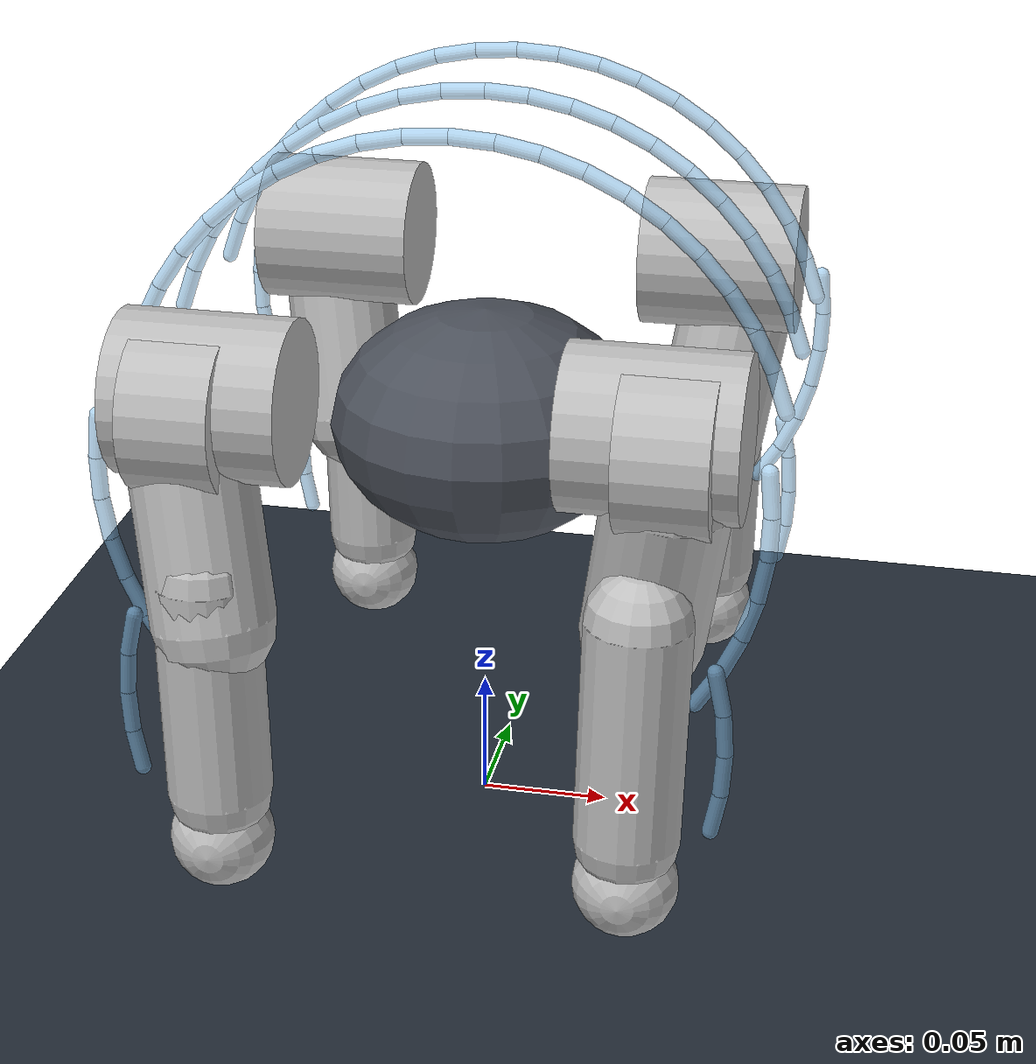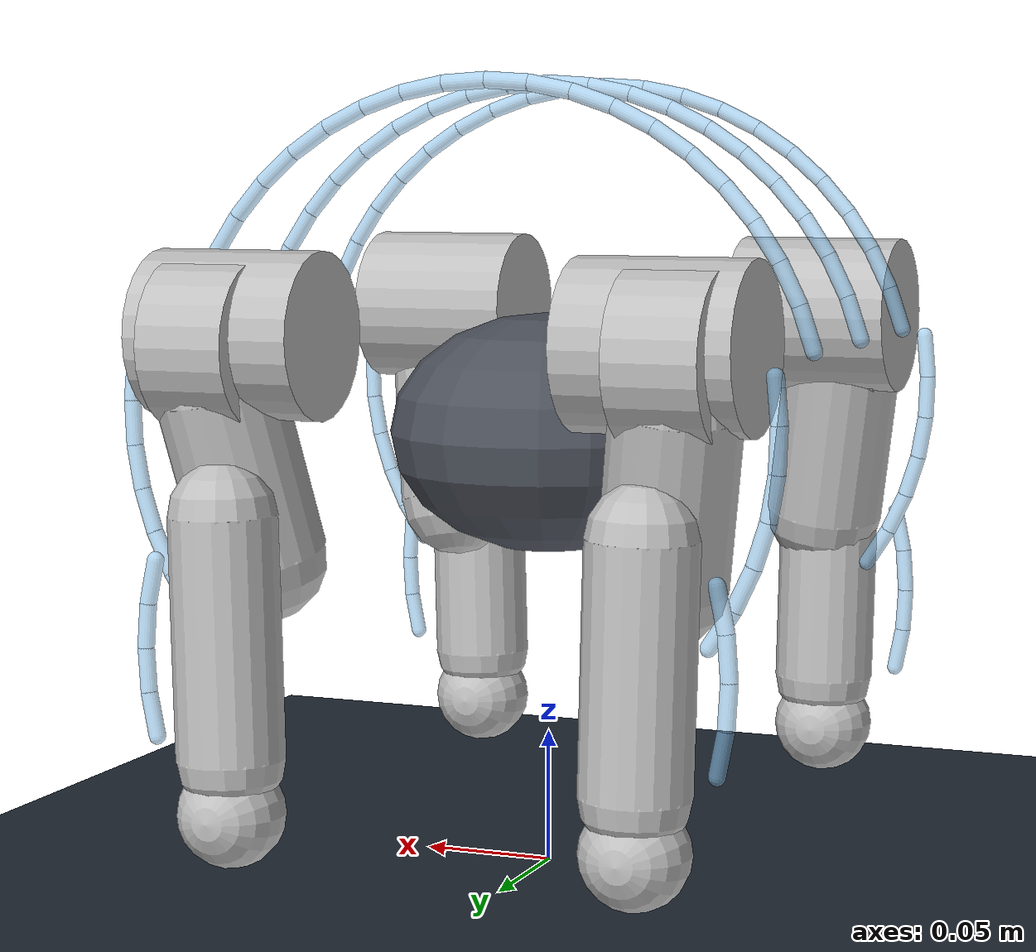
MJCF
<mujoco model="rollingquad_2">
  <compiler angle="radian" autolimits="true" />
  <option timestep="0.001" gravity="0 0 -9.81" integrator="implicitfast" cone="elliptic" iterations="20" ls_iterations="10" />
  <visual>
    <global azimuth="120" elevation="-18" offwidth="960" offheight="720" />
    <headlight ambient="0.35 0.35 0.35" diffuse="0.65 0.65 0.65" specular="0.20 0.20 0.20" />
  </visual>
  <asset>
    <texture type="skybox" builtin="gradient" rgb1=".18 .23 .30" rgb2=".02 .03 .05" width="512" height="512" />
    <texture name="grid" type="2d" builtin="checker" width="512" height="512" rgb1=".18 .22 .27" rgb2=".10 .13 .17" />
    <material name="ground" texture="grid" texrepeat="1 1" texuniform="true" reflectance="0.05" />
    <mesh name="Lower_leg_with_foot_1" content_type="model/stl" file="../meshes/Lower_leg_with_foot_1.stl" />
    <mesh name="Lower_leg_with_foot_1_2" content_type="model/stl" file="../meshes/Lower_leg_with_foot_1_2.stl" />
    <mesh name="Lower_leg_with_foot_mirror_1" content_type="model/stl" file="../meshes/Lower_leg_with_foot_mirror_1.stl" />
    <mesh name="Lower_leg_with_foot_mirror_1_2" content_type="model/stl" file="../meshes/Lower_leg_with_foot_mirror_1_2.stl" />
    <mesh name="Upperleg_with_motor_1" content_type="model/stl" file="../meshes/Upperleg_with_motor_1.stl" />
    <mesh name="Upperleg_with_motor_1_2" content_type="model/stl" file="../meshes/Upperleg_with_motor_1_2.stl" />
    <mesh name="Upperleg_with_motor_mirror_1" content_type="model/stl" file="../meshes/Upperleg_with_motor_mirror_1.stl" />
    <mesh name="Upperleg_with_motor_mirror_1_2" content_type="model/stl" file="../meshes/Upperleg_with_motor_mirror_1_2.stl" />
    <mesh name="abduction_mirror_1" content_type="model/stl" file="../meshes/abduction_mirror_1.stl" />
    <mesh name="abduction_mirror_1_2" content_type="model/stl" file="../meshes/abduction_mirror_1_2.stl" />
    <mesh name="abduction_1" content_type="model/stl" file="../meshes/abduction_1.stl" />
    <mesh name="abduction_1_2" content_type="model/stl" file="../meshes/abduction_1_2.stl" />
    <mesh name="torso_2" content_type="model/stl" file="../meshes/torso_2.stl" />
  </asset>
  <default>
    <joint limited="true" damping="0.01" armature="0.0016" />
    <!-- Individual robot geoms override these masks with the self-collision
         whitelist below.  Bit 1 remains the floor category. -->
    <geom contype="0" conaffinity="1" condim="3" friction="0.8 0.02 0.01" solref="0.01 1" solimp="0.9 0.95 0.001" />
    <!-- Position servo: kp=5, kd=0.1, torque limited to +/-3 N m. -->
    <default class="single_servo">
      <general forcelimited="true" forcerange="-3 3" ctrllimited="true" gainprm="5 0 0" biastype="affine" biasprm="0 -5 -0.1" />
    </default>
  </default>
  <worldbody>
    <light name="key" directional="true" castshadow="true" pos="-1 -2 4" dir="0.25 0.15 -1" diffuse="0.85 0.85 0.82" specular="0.20 0.20 0.20" />
    <camera name="tracking" mode="targetbody" target="torso" pos="0.55 -0.65 0.40" />
    <geom name="floor" type="plane" size="12 6 0.05" contype="1" conaffinity="0" material="ground" />
    <body name="torso" pos="0 0 0.21">
      <freejoint name="root" />
      <inertial pos="-0.000349048829 -2.267291516e-05 -0.0168232962" mass="1.47556" fullinertia="0.00473904 0.00838848 0.00826464 1.23727e-08 7.69713e-05 -7.00545e-07" />
      <!-- Collision bits: 2=front leg, 4=rear leg, 8=foot/shank,
           16=torso.  Enabled pairs: front-rear leg, leg-torso,
           foot-leg and foot-foot. -->
      <body name="front_right_hip_abduction_body" pos="0.0752002 -0.0650008 -3.15437e-07" quat="0.707105 0.707108 1.28657e-06 5.65589e-07">
        <inertial pos="0.00310332 -0.00189648 -0.160009" quat="0.969701 -0.00815916 0.0210186 -0.243253" mass="0.179903" diaginertia="7.15749e-05 5.16423e-05 4.28065e-05" />
        <joint name="front_right_hip" range="-1.745329252 1.902408885" actuatorfrcrange="-3 3" axis="0 0 1" />
        <geom name="front_right_hip_link_geom" contype="2" conaffinity="29" rgba="0.749 0.749 0.749 1" type="cylinder" size="0.03 0.0315" pos="0.0041383029 -0.0042852449 -0.15880149" quat="0.7071067811865476 0 0.7071067811865476 0" />
        <body name="front_right_thigh" pos="0.0146072 -0.00819716 -0.162001">
          <inertial pos="-0.0101991 -0.0708564 0.000226941" quat="0.617317 0.345769 -0.618182 0.342365" mass="0.18907" diaginertia="0.000132232 0.000106686 4.49875e-05" />
          <joint name="front_right_hip_abduction" range="-0.5236 3.66519" actuatorfrcrange="-3 3" axis="0.872069 -0.489382 0" />
          <geom name="front_right_thigh_geom" contype="2" conaffinity="29" rgba="0.749 0.749 0.749 1" type="capsule" size="0.023" fromto="-0.0039743073 -0.015540544 -0.0032586879 -0.0137759 -0.0767678 0.01075" />
          <geom name="front_right_thigh_motor" type="cylinder" size="0.03 0.0165" pos="-0.0039743073 0.00095945588 -0.0032586879" quat="0.7071067811865476 0 0.7071067811865476 0" contype="2" conaffinity="29" rgba="0.749 0.749 0.749 1" />
          <body name="front_right_shank" pos="-0.0137759 -0.0767678 0.01075">
            <inertial pos="0.00457242 -0.0602669 -0.0272819" quat="0.439984 0.532687 -0.48053 0.540139" mass="0.046425" diaginertia="6.03771e-05 5.63949e-05 8.99449e-06" />
            <joint name="front_right_knee" range="0.1745329252 2.094395102" actuatorfrcrange="-3 3" axis="0 0 -1" />
            <geom name="front_right_foot_proxy" contype="8" conaffinity="15" rgba="0.749 0.749 0.749 1" type="sphere" size="0.0195" pos="1.796e-05 -0.08776548 -0.02669029" />
            <geom name="front_right_shank_geom" type="capsule" size="0.0195" fromto="0.0021300607 0.018498501 -0.026470547 1.796e-05 -0.06826548 -0.02669029" contype="8" conaffinity="15" rgba="0.749 0.749 0.749 1" />
            <site name="front_right_foot_site" pos="0.00001796 -0.08776548 -0.02669029" size="0.004" />
            <geom name="front_right_shank_shell_01" type="capsule" size="0.003" fromto="0.029688218 -0.062323795 -0.026470547 0.032737023 -0.04650192 -0.026470547" contype="16" conaffinity="7" rgba="0.55 0.78 0.95 0.60" />
            <geom name="front_right_shank_shell_02" type="capsule" size="0.003" fromto="0.032737023 -0.04650192 -0.026470547 0.033676562 -0.030444254 -0.026470547" contype="16" conaffinity="7" rgba="0.55 0.78 0.95 0.60" />
            <geom name="front_right_shank_shell_03" type="capsule" size="0.003" fromto="0.033676562 -0.030444254 -0.026470547 0.03249076 -0.014425551 -0.026470547" contype="16" conaffinity="7" rgba="0.55 0.78 0.95 0.60" />
            <geom name="front_right_shank_shell_04" type="capsule" size="0.003" fromto="0.03249076 -0.014425551 -0.026470547 0.029199905 0.0012801057 -0.026470547" contype="16" conaffinity="7" rgba="0.55 0.78 0.95 0.60" />
          </body>
          <geom name="front_right_thigh_shell_01" type="capsule" size="0.003" fromto="0.03014752 -0.03630308 -0.0032586879 0.030778093 -0.020227207 -0.0032586879" contype="16" conaffinity="7" rgba="0.55 0.78 0.95 0.60" />
          <geom name="front_right_thigh_shell_02" type="capsule" size="0.003" fromto="0.030778093 -0.020227207 -0.0032586879 0.029286892 -0.0041797872 -0.0032586879" contype="16" conaffinity="7" rgba="0.55 0.78 0.95 0.60" />
          <geom name="front_right_thigh_shell_03" type="capsule" size="0.003" fromto="0.00715965 -0.095480788 -0.0032586879 0.015812847 -0.081976517 -0.0032586879" contype="16" conaffinity="7" rgba="0.55 0.78 0.95 0.60" />
          <geom name="front_right_thigh_shell_04" type="capsule" size="0.003" fromto="0.015812847 -0.081976517 -0.0032586879 0.022600329 -0.067444151 -0.0032586879" contype="16" conaffinity="7" rgba="0.55 0.78 0.95 0.60" />
          <geom name="front_right_thigh_shell_05" type="capsule" size="0.003" fromto="0.022600329 -0.067444151 -0.0032586879 0.027405962 -0.052132342 -0.0032586879" contype="16" conaffinity="7" rgba="0.55 0.78 0.95 0.60" />
          <geom name="front_right_thigh_shell_06" type="capsule" size="0.003" fromto="0.027405962 -0.052132342 -0.0032586879 0.03014752 -0.03630308 -0.0032586879" contype="16" conaffinity="7" rgba="0.55 0.78 0.95 0.60" />
        </body>
      </body>
      <body name="rear_left_hip_abduction_body" pos="-0.0752002 0.0650008 3.15437e-07" quat="0.707105 0.707108 1.28657e-06 5.65589e-07">
        <inertial pos="-0.00310332 -0.00189648 0.160009" quat="0.969701 0.00815916 0.0210186 0.243253" mass="0.179903" diaginertia="7.15749e-05 5.16423e-05 4.28065e-05" />
        <joint name="rear_left_hip" range="-1.745329252 1.902408885" actuatorfrcrange="-3 3" axis="0 0 -1" />
        <geom name="rear_left_hip_link_geom" contype="4" conaffinity="27" rgba="0.749 0.749 0.749 1" type="cylinder" size="0.03 0.0315" pos="-0.0041383029 -0.0042852449 0.15880149" quat="0.7071067811865476 0 0.7071067811865476 0" />
        <body name="rear_left_thigh" pos="-0.0156536 -0.00878442 0.162001">
          <inertial pos="0.0112456 -0.0702691 -0.000226941" quat="0.345769 0.617317 -0.342365 0.618182" mass="0.18907" diaginertia="0.000132232 0.000106686 4.49875e-05" />
          <joint name="rear_left_hip_abduction" range="-0.5236 3.66519" actuatorfrcrange="-3 3" axis="-0.872069 -0.489382 0" />
          <geom name="rear_left_thigh_geom" contype="4" conaffinity="27" rgba="0.749 0.749 0.749 1" type="capsule" size="0.023" fromto="0.0050197324 -0.014953284 0.0032551564 0.0148224 -0.0761805 0.014" />
          <geom name="rear_left_thigh_motor" type="cylinder" size="0.03 0.0165" pos="0.0050197324 0.0015467162 0.0032551564" quat="0.7071067811865476 0 0.7071067811865476 0" contype="4" conaffinity="27" rgba="0.749 0.749 0.749 1" />
          <body name="rear_left_shank" pos="0.0148224 -0.0761805 0.014">
            <inertial pos="-0.00457242 -0.0602669 0.0025319" quat="0.532687 0.439984 -0.540139 0.48053" mass="0.046425" diaginertia="6.03771e-05 5.63949e-05 8.99449e-06" />
            <joint name="rear_left_knee" range="0.1745329252 2.094395102" actuatorfrcrange="-3 3" axis="0 0 1" />
            <geom name="rear_left_foot_proxy" contype="8" conaffinity="15" rgba="0.749 0.749 0.749 1" type="sphere" size="0.0195" pos="-1.796e-05 -0.08776548 0.00194029" />
            <geom name="rear_left_shank_geom" type="capsule" size="0.0195" fromto="-0.0021300606 0.018498501 0.0017205471 -1.796e-05 -0.06826548 0.00194029" contype="8" conaffinity="15" rgba="0.749 0.749 0.749 1" />
            <site name="rear_left_foot_site" pos="-0.00001796 -0.08776548 0.00194029" size="0.004" />
            <geom name="rear_left_shank_shell_01" type="capsule" size="0.003" fromto="-0.029414791 0.00076822822 0.0017205471 -0.032705617 -0.014937443 0.0017205471" contype="16" conaffinity="7" rgba="0.55 0.78 0.95 0.60" />
            <geom name="rear_left_shank_shell_02" type="capsule" size="0.003" fromto="-0.032705617 -0.014937443 0.0017205471 -0.03389139 -0.030956158 0.0017205471" contype="16" conaffinity="7" rgba="0.55 0.78 0.95 0.60" />
            <geom name="rear_left_shank_shell_03" type="capsule" size="0.003" fromto="-0.03389139 -0.030956158 0.0017205471 -0.032951822 -0.047013832 0.0017205471" contype="16" conaffinity="7" rgba="0.55 0.78 0.95 0.60" />
            <geom name="rear_left_shank_shell_04" type="capsule" size="0.003" fromto="-0.032951822 -0.047013832 0.0017205471 -0.029902988 -0.062835713 0.0017205471" contype="16" conaffinity="7" rgba="0.55 0.78 0.95 0.60" />
          </body>
          <geom name="rear_left_thigh_shell_01" type="capsule" size="0.003" fromto="-0.028240558 -0.0035918627 0.0032551564 -0.029731727 -0.019639283 0.0032551564" contype="16" conaffinity="7" rgba="0.55 0.78 0.95 0.60" />
          <geom name="rear_left_thigh_shell_02" type="capsule" size="0.003" fromto="-0.029731727 -0.019639283 0.0032551564 -0.029101121 -0.035715153 0.0032551564" contype="16" conaffinity="7" rgba="0.55 0.78 0.95 0.60" />
          <geom name="rear_left_thigh_shell_03" type="capsule" size="0.003" fromto="-0.029101121 -0.035715153 0.0032551564 -0.026359531 -0.05154441 0.0032551564" contype="16" conaffinity="7" rgba="0.55 0.78 0.95 0.60" />
          <geom name="rear_left_thigh_shell_04" type="capsule" size="0.003" fromto="-0.026359531 -0.05154441 0.0032551564 -0.021553865 -0.066856211 0.0032551564" contype="16" conaffinity="7" rgba="0.55 0.78 0.95 0.60" />
          <geom name="rear_left_thigh_shell_05" type="capsule" size="0.003" fromto="-0.021553865 -0.066856211 0.0032551564 -0.01476635 -0.081388568 0.0032551564" contype="16" conaffinity="7" rgba="0.55 0.78 0.95 0.60" />
          <geom name="rear_left_thigh_shell_06" type="capsule" size="0.003" fromto="-0.01476635 -0.081388568 0.0032551564 -0.0061131219 -0.094892826 0.0032551564" contype="16" conaffinity="7" rgba="0.55 0.78 0.95 0.60" />
        </body>
      </body>
      <body name="front_left_hip_abduction_body" pos="0.0751998 0.0650012 1.62087e-07" quat="0.707105 0.707108 1.28657e-06 5.65589e-07">
        <inertial pos="0.00284687 -0.00174682 0.15995" quat="0.969271 -0.0133055 -0.0221507 -0.244634" mass="0.179903" diaginertia="7.23188e-05 5.20415e-05 4.37798e-05" />
        <joint name="front_left_hip" range="-1.74533 1.90241" actuatorfrcrange="-3 3" />
        <geom name="front_left_hip_link_geom" contype="2" conaffinity="29" rgba="0.749 0.749 0.749 1" type="cylinder" size="0.03 0.0315" pos="0.0041243067 -0.0042493257 0.15847315" quat="0.7071067811865476 0 0.7071067811865476 0" />
        <body name="front_left_thigh" pos="0.0146072 -0.00819716 0.162001">
          <inertial pos="-0.0103691 -0.0707641 0.000638364" quat="0.614246 0.344453 -0.621362 0.343458" mass="0.18907" diaginertia="0.000132245 0.000106711 4.4972e-05" />
          <joint name="front_left_hip_abduction" range="-0.5236 3.66519" actuatorfrcrange="-3 3" axis="-0.872069 0.489382 0" />
          <geom name="front_left_thigh_geom" contype="2" conaffinity="29" rgba="0.749 0.749 0.749 1" type="capsule" size="0.023" fromto="-0.0043240375 -0.015442675 0.0039704566 -0.0139503 -0.0766699 -0.00975" />
          <geom name="front_left_thigh_motor" type="cylinder" size="0.03 0.0165" pos="-0.0043240375 0.0010573248 0.0039704566" quat="0.7071067811865476 0 0.7071067811865476 0" contype="2" conaffinity="29" rgba="0.749 0.749 0.749 1" />
          <body name="front_left_shank" pos="-0.0139503 -0.0766699 -0.00975">
            <inertial pos="0.00457242 -0.0602669 0.0272819" quat="0.48053 0.540139 -0.439984 0.532687" mass="0.046425" diaginertia="6.03771e-05 5.63949e-05 8.99449e-06" />
            <joint name="front_left_knee" range="0.17453 2.0944" actuatorfrcrange="-3 3" axis="0 0 -1" />
            <geom name="front_left_foot_proxy" contype="8" conaffinity="15" rgba="0.749 0.749 0.749 1" type="sphere" size="0.0195" pos="2.256e-05 -0.08782371 0.02672838" />
            <geom name="front_left_shank_geom" type="capsule" size="0.0195" fromto="0.002221409 0.018498555 0.026729771 2.256e-05 -0.06832371 0.02672838" contype="8" conaffinity="15" rgba="0.749 0.749 0.749 1" />
            <site name="front_left_foot_site" pos="0.00002256 -0.08782371 0.02672838" size="0.004" />
            <geom name="front_left_shank_shell_01" type="capsule" size="0.003" fromto="0.029805586 -0.062088359 0.026729771 0.032854391 -0.046266484 0.026729771" contype="16" conaffinity="7" rgba="0.55 0.78 0.95 0.60" />
            <geom name="front_left_shank_shell_02" type="capsule" size="0.003" fromto="0.032854391 -0.046266484 0.026729771 0.033793933 -0.030208823 0.026729771" contype="16" conaffinity="7" rgba="0.55 0.78 0.95 0.60" />
            <geom name="front_left_shank_shell_03" type="capsule" size="0.003" fromto="0.033793933 -0.030208823 0.026729771 0.032608134 -0.014190128 0.026729771" contype="16" conaffinity="7" rgba="0.55 0.78 0.95 0.60" />
            <geom name="front_left_shank_shell_04" type="capsule" size="0.003" fromto="0.032608134 -0.014190128 0.026729771 0.029317283 0.0015155182 0.026729771" contype="16" conaffinity="7" rgba="0.55 0.78 0.95 0.60" />
          </body>
          <geom name="front_left_thigh_shell_01" type="capsule" size="0.003" fromto="0.030147207 -0.036302078 0.0039704566 0.030777768 -0.020226227 0.0039704566" contype="16" conaffinity="7" rgba="0.55 0.78 0.95 0.60" />
          <geom name="front_left_thigh_shell_02" type="capsule" size="0.003" fromto="0.030777768 -0.020226227 0.0039704566 0.029286554 -0.0041788301 0.0039704566" contype="16" conaffinity="7" rgba="0.55 0.78 0.95 0.60" />
          <geom name="front_left_thigh_shell_03" type="capsule" size="0.003" fromto="0.0071593748 -0.095479719 0.0039704566 0.015812564 -0.081975462 0.0039704566" contype="16" conaffinity="7" rgba="0.55 0.78 0.95 0.60" />
          <geom name="front_left_thigh_shell_04" type="capsule" size="0.003" fromto="0.015812564 -0.081975462 0.0039704566 0.022600038 -0.067443111 0.0039704566" contype="16" conaffinity="7" rgba="0.55 0.78 0.95 0.60" />
          <geom name="front_left_thigh_shell_05" type="capsule" size="0.003" fromto="0.022600038 -0.067443111 0.0039704566 0.027405661 -0.05213132 0.0039704566" contype="16" conaffinity="7" rgba="0.55 0.78 0.95 0.60" />
          <geom name="front_left_thigh_shell_06" type="capsule" size="0.003" fromto="0.027405661 -0.05213132 0.0039704566 0.030147207 -0.036302078 0.0039704566" contype="16" conaffinity="7" rgba="0.55 0.78 0.95 0.60" />
        </body>
      </body>
      <body name="rear_right_hip_abduction_body" pos="-0.0751998 -0.0650012 -1.62087e-07" quat="0.707105 0.707108 1.28657e-06 5.65589e-07">
        <inertial pos="-0.00284687 -0.00174682 -0.15995" quat="0.969271 0.0133055 -0.0221507 0.244634" mass="0.179903" diaginertia="7.23188e-05 5.20415e-05 4.37798e-05" />
        <joint name="rear_right_hip" range="-1.74533 1.90241" actuatorfrcrange="-3 3" axis="0 0 -1" />
        <geom name="rear_right_hip_link_geom" contype="4" conaffinity="27" rgba="0.749 0.749 0.749 1" type="cylinder" size="0.03 0.0315" pos="-0.0041243068 -0.0042493257 -0.15847315" quat="0.7071067811865476 0 0.7071067811865476 0" />
        <body name="rear_right_thigh" pos="-0.0146072 -0.00819716 -0.162001">
          <inertial pos="0.0103691 -0.0707641 -0.000638364" quat="0.344453 0.614246 -0.343458 0.621362" mass="0.18907" diaginertia="0.000132245 0.000106711 4.4972e-05" />
          <joint name="rear_right_hip_abduction" range="-0.5236 3.66519" actuatorfrcrange="-3 3" axis="0.872069 0.489382 0" />
          <geom name="rear_right_thigh_geom" contype="4" conaffinity="27" rgba="0.749 0.749 0.749 1" type="capsule" size="0.023" fromto="0.0043240377 -0.015442675 -0.0039704566 0.0139503 -0.0766699 0.00975" />
          <geom name="rear_right_thigh_motor" type="cylinder" size="0.03 0.0165" pos="0.0043240377 0.0010573248 -0.0039704566" quat="0.7071067811865476 0 0.7071067811865476 0" contype="4" conaffinity="27" rgba="0.749 0.749 0.749 1" />
          <body name="rear_right_shank" pos="0.0139503 -0.0766699 0.00975">
            <inertial pos="-0.00457242 -0.0602669 -0.0272819" quat="0.540139 0.48053 -0.532687 0.439984" mass="0.046425" diaginertia="6.03771e-05 5.63949e-05 8.99449e-06" />
            <joint name="rear_right_knee" range="0.17453 2.0944" actuatorfrcrange="-3 3" />
            <geom name="rear_right_foot_proxy" contype="8" conaffinity="15" rgba="0.749 0.749 0.749 1" type="sphere" size="0.0195" pos="-2.256e-05 -0.08782371 -0.02672838" />
            <geom name="rear_right_shank_geom" type="capsule" size="0.0195" fromto="-0.0022214094 0.018498555 -0.026729771 -2.256e-05 -0.06832371 -0.02672838" contype="8" conaffinity="15" rgba="0.749 0.749 0.749 1" />
            <site name="rear_right_foot_site" pos="-0.00002256 -0.08782371 -0.02672838" size="0.004" />
            <geom name="rear_right_shank_shell_01" type="capsule" size="0.003" fromto="-0.028025766 0.0045888012 -0.026729771 -0.031316581 -0.011116844 -0.026729771" contype="16" conaffinity="7" rgba="0.55 0.78 0.95 0.60" />
            <geom name="rear_right_shank_shell_02" type="capsule" size="0.003" fromto="-0.031316581 -0.011116844 -0.026729771 -0.032502343 -0.027135534 -0.026729771" contype="16" conaffinity="7" rgba="0.55 0.78 0.95 0.60" />
            <geom name="rear_right_shank_shell_03" type="capsule" size="0.003" fromto="-0.032502343 -0.027135534 -0.026729771 -0.031562764 -0.043193183 -0.026729771" contype="16" conaffinity="7" rgba="0.55 0.78 0.95 0.60" />
            <geom name="rear_right_shank_shell_04" type="capsule" size="0.003" fromto="-0.031562764 -0.043193183 -0.026729771 -0.028513921 -0.05901504 -0.026729771" contype="16" conaffinity="7" rgba="0.55 0.78 0.95 0.60" />
          </body>
          <geom name="rear_right_thigh_shell_01" type="capsule" size="0.003" fromto="-0.029286408 -0.0041799733 -0.0039704566 -0.030777587 -0.020227375 -0.0039704566" contype="16" conaffinity="7" rgba="0.55 0.78 0.95 0.60" />
          <geom name="rear_right_thigh_shell_02" type="capsule" size="0.003" fromto="-0.030777587 -0.020227375 -0.0039704566 -0.030146993 -0.036303225 -0.0039704566" contype="16" conaffinity="7" rgba="0.55 0.78 0.95 0.60" />
          <geom name="rear_right_thigh_shell_03" type="capsule" size="0.003" fromto="-0.030146993 -0.036303225 -0.0039704566 -0.027405414 -0.052132461 -0.0039704566" contype="16" conaffinity="7" rgba="0.55 0.78 0.95 0.60" />
          <geom name="rear_right_thigh_shell_04" type="capsule" size="0.003" fromto="-0.027405414 -0.052132461 -0.0039704566 -0.022599761 -0.067444239 -0.0039704566" contype="16" conaffinity="7" rgba="0.55 0.78 0.95 0.60" />
          <geom name="rear_right_thigh_shell_05" type="capsule" size="0.003" fromto="-0.022599761 -0.067444239 -0.0039704566 -0.01581226 -0.081976571 -0.0039704566" contype="16" conaffinity="7" rgba="0.55 0.78 0.95 0.60" />
          <geom name="rear_right_thigh_shell_06" type="capsule" size="0.003" fromto="-0.01581226 -0.081976571 -0.0039704566 -0.0071590456 -0.095480806 -0.0039704566" contype="16" conaffinity="7" rgba="0.55 0.78 0.95 0.60" />
        </body>
      </body>
      <geom name="torso_shell_01" type="capsule" size="0.003" fromto="0.12025777 -0.06 -0.0072940978 0.115023 -0.06 0.0081270184" contype="16" conaffinity="7" rgba="0.55 0.78 0.95 0.60" />
      <geom name="torso_shell_02" type="capsule" size="0.003" fromto="0.12025777 0 -0.0072940978 0.115023 0 0.0081270184" contype="16" conaffinity="7" rgba="0.55 0.78 0.95 0.60" />
      <geom name="torso_shell_03" type="capsule" size="0.003" fromto="0.12025777 0.06 -0.0072940978 0.115023 0.06 0.0081270184" contype="16" conaffinity="7" rgba="0.55 0.78 0.95 0.60" />
      <geom name="torso_shell_04" type="capsule" size="0.003" fromto="0.115023 -0.06 0.0081270184 0.10782016 -0.06 0.022732931" contype="16" conaffinity="7" rgba="0.55 0.78 0.95 0.60" />
      <geom name="torso_shell_05" type="capsule" size="0.003" fromto="0.115023 0 0.0081270184 0.10782016 0 0.022732931" contype="16" conaffinity="7" rgba="0.55 0.78 0.95 0.60" />
      <geom name="torso_shell_06" type="capsule" size="0.003" fromto="0.115023 0.06 0.0081270184 0.10782016 0.06 0.022732931" contype="16" conaffinity="7" rgba="0.55 0.78 0.95 0.60" />
      <geom name="torso_shell_07" type="capsule" size="0.003" fromto="0.10782016 -0.06 0.022732931 0.098772491 -0.06 0.036273729" contype="16" conaffinity="7" rgba="0.55 0.78 0.95 0.60" />
      <geom name="torso_shell_08" type="capsule" size="0.003" fromto="0.10782016 0 0.022732931 0.098772491 0 0.036273729" contype="16" conaffinity="7" rgba="0.55 0.78 0.95 0.60" />
      <geom name="torso_shell_09" type="capsule" size="0.003" fromto="0.10782016 0.06 0.022732931 0.098772491 0.06 0.036273729" contype="16" conaffinity="7" rgba="0.55 0.78 0.95 0.60" />
      <geom name="torso_shell_10" type="capsule" size="0.003" fromto="0.098772491 -0.06 0.036273729 0.088034794 -0.06 0.048517725" contype="16" conaffinity="7" rgba="0.55 0.78 0.95 0.60" />
      <geom name="torso_shell_11" type="capsule" size="0.003" fromto="0.098772491 0 0.036273729 0.088034794 0 0.048517725" contype="16" conaffinity="7" rgba="0.55 0.78 0.95 0.60" />
      <geom name="torso_shell_12" type="capsule" size="0.003" fromto="0.098772491 0.06 0.036273729 0.088034794 0.06 0.048517725" contype="16" conaffinity="7" rgba="0.55 0.78 0.95 0.60" />
      <geom name="torso_shell_13" type="capsule" size="0.003" fromto="0.088034794 -0.06 0.048517725 0.075790798 -0.06 0.059255422" contype="16" conaffinity="7" rgba="0.55 0.78 0.95 0.60" />
      <geom name="torso_shell_14" type="capsule" size="0.003" fromto="0.088034794 0 0.048517725 0.075790798 0 0.059255422" contype="16" conaffinity="7" rgba="0.55 0.78 0.95 0.60" />
      <geom name="torso_shell_15" type="capsule" size="0.003" fromto="0.088034794 0.06 0.048517725 0.075790798 0.06 0.059255422" contype="16" conaffinity="7" rgba="0.55 0.78 0.95 0.60" />
      <geom name="torso_shell_16" type="capsule" size="0.003" fromto="0.075790798 -0.06 0.059255422 0.06225 -0.06 0.068303094" contype="16" conaffinity="7" rgba="0.55 0.78 0.95 0.60" />
      <geom name="torso_shell_17" type="capsule" size="0.003" fromto="0.075790798 0 0.059255422 0.06225 0 0.068303094" contype="16" conaffinity="7" rgba="0.55 0.78 0.95 0.60" />
      <geom name="torso_shell_18" type="capsule" size="0.003" fromto="0.075790798 0.06 0.059255422 0.06225 0.06 0.068303094" contype="16" conaffinity="7" rgba="0.55 0.78 0.95 0.60" />
      <geom name="torso_shell_19" type="capsule" size="0.003" fromto="0.06225 -0.06 0.068303094 0.047644087 -0.06 0.075505933" contype="16" conaffinity="7" rgba="0.55 0.78 0.95 0.60" />
      <geom name="torso_shell_20" type="capsule" size="0.003" fromto="0.06225 0 0.068303094 0.047644087 0 0.075505933" contype="16" conaffinity="7" rgba="0.55 0.78 0.95 0.60" />
      <geom name="torso_shell_21" type="capsule" size="0.003" fromto="0.06225 0.06 0.068303094 0.047644087 0.06 0.075505933" contype="16" conaffinity="7" rgba="0.55 0.78 0.95 0.60" />
      <geom name="torso_shell_22" type="capsule" size="0.003" fromto="0.047644087 -0.06 0.075505933 0.032222971 -0.06 0.080740696" contype="16" conaffinity="7" rgba="0.55 0.78 0.95 0.60" />
      <geom name="torso_shell_23" type="capsule" size="0.003" fromto="0.047644087 0 0.075505933 0.032222971 0 0.080740696" contype="16" conaffinity="7" rgba="0.55 0.78 0.95 0.60" />
      <geom name="torso_shell_24" type="capsule" size="0.003" fromto="0.047644087 0.06 0.075505933 0.032222971 0.06 0.080740696" contype="16" conaffinity="7" rgba="0.55 0.78 0.95 0.60" />
      <geom name="torso_shell_25" type="capsule" size="0.003" fromto="0.032222971 -0.06 0.080740696 0.016250511 -0.06 0.083917816" contype="16" conaffinity="7" rgba="0.55 0.78 0.95 0.60" />
      <geom name="torso_shell_26" type="capsule" size="0.003" fromto="0.032222971 0 0.080740696 0.016250511 0 0.083917816" contype="16" conaffinity="7" rgba="0.55 0.78 0.95 0.60" />
      <geom name="torso_shell_27" type="capsule" size="0.003" fromto="0.032222971 0.06 0.080740696 0.016250511 0.06 0.083917816" contype="16" conaffinity="7" rgba="0.55 0.78 0.95 0.60" />
      <geom name="torso_shell_28" type="capsule" size="0.003" fromto="0.016250511 -0.06 0.083917816 7.6234263e-18 -0.06 0.084982931" contype="16" conaffinity="7" rgba="0.55 0.78 0.95 0.60" />
      <geom name="torso_shell_29" type="capsule" size="0.003" fromto="0.016250511 0 0.083917816 7.6234263e-18 0 0.084982931" contype="16" conaffinity="7" rgba="0.55 0.78 0.95 0.60" />
      <geom name="torso_shell_30" type="capsule" size="0.003" fromto="0.016250511 0.06 0.083917816 7.6234263e-18 0.06 0.084982931" contype="16" conaffinity="7" rgba="0.55 0.78 0.95 0.60" />
      <geom name="torso_shell_31" type="capsule" size="0.003" fromto="7.6234263e-18 -0.06 0.084982931 -0.016250511 -0.06 0.083917816" contype="16" conaffinity="7" rgba="0.55 0.78 0.95 0.60" />
      <geom name="torso_shell_32" type="capsule" size="0.003" fromto="7.6234263e-18 0 0.084982931 -0.016250511 0 0.083917816" contype="16" conaffinity="7" rgba="0.55 0.78 0.95 0.60" />
      <geom name="torso_shell_33" type="capsule" size="0.003" fromto="7.6234263e-18 0.06 0.084982931 -0.016250511 0.06 0.083917816" contype="16" conaffinity="7" rgba="0.55 0.78 0.95 0.60" />
      <geom name="torso_shell_34" type="capsule" size="0.003" fromto="-0.016250511 -0.06 0.083917816 -0.032222971 -0.06 0.080740696" contype="16" conaffinity="7" rgba="0.55 0.78 0.95 0.60" />
      <geom name="torso_shell_35" type="capsule" size="0.003" fromto="-0.016250511 0 0.083917816 -0.032222971 0 0.080740696" contype="16" conaffinity="7" rgba="0.55 0.78 0.95 0.60" />
      <geom name="torso_shell_36" type="capsule" size="0.003" fromto="-0.016250511 0.06 0.083917816 -0.032222971 0.06 0.080740696" contype="16" conaffinity="7" rgba="0.55 0.78 0.95 0.60" />
      <geom name="torso_shell_37" type="capsule" size="0.003" fromto="-0.032222971 -0.06 0.080740696 -0.047644087 -0.06 0.075505933" contype="16" conaffinity="7" rgba="0.55 0.78 0.95 0.60" />
      <geom name="torso_shell_38" type="capsule" size="0.003" fromto="-0.032222971 0 0.080740696 -0.047644087 0 0.075505933" contype="16" conaffinity="7" rgba="0.55 0.78 0.95 0.60" />
      <geom name="torso_shell_39" type="capsule" size="0.003" fromto="-0.032222971 0.06 0.080740696 -0.047644087 0.06 0.075505933" contype="16" conaffinity="7" rgba="0.55 0.78 0.95 0.60" />
      <geom name="torso_shell_40" type="capsule" size="0.003" fromto="-0.047644087 -0.06 0.075505933 -0.06225 -0.06 0.068303094" contype="16" conaffinity="7" rgba="0.55 0.78 0.95 0.60" />
      <geom name="torso_shell_41" type="capsule" size="0.003" fromto="-0.047644087 0 0.075505933 -0.06225 0 0.068303094" contype="16" conaffinity="7" rgba="0.55 0.78 0.95 0.60" />
      <geom name="torso_shell_42" type="capsule" size="0.003" fromto="-0.047644087 0.06 0.075505933 -0.06225 0.06 0.068303094" contype="16" conaffinity="7" rgba="0.55 0.78 0.95 0.60" />
      <geom name="torso_shell_43" type="capsule" size="0.003" fromto="-0.06225 -0.06 0.068303094 -0.075790798 -0.06 0.059255422" contype="16" conaffinity="7" rgba="0.55 0.78 0.95 0.60" />
      <geom name="torso_shell_44" type="capsule" size="0.003" fromto="-0.06225 0 0.068303094 -0.075790798 0 0.059255422" contype="16" conaffinity="7" rgba="0.55 0.78 0.95 0.60" />
      <geom name="torso_shell_45" type="capsule" size="0.003" fromto="-0.06225 0.06 0.068303094 -0.075790798 0.06 0.059255422" contype="16" conaffinity="7" rgba="0.55 0.78 0.95 0.60" />
      <geom name="torso_shell_46" type="capsule" size="0.003" fromto="-0.075790798 -0.06 0.059255422 -0.088034794 -0.06 0.048517725" contype="16" conaffinity="7" rgba="0.55 0.78 0.95 0.60" />
      <geom name="torso_shell_47" type="capsule" size="0.003" fromto="-0.075790798 0 0.059255422 -0.088034794 0 0.048517725" contype="16" conaffinity="7" rgba="0.55 0.78 0.95 0.60" />
      <geom name="torso_shell_48" type="capsule" size="0.003" fromto="-0.075790798 0.06 0.059255422 -0.088034794 0.06 0.048517725" contype="16" conaffinity="7" rgba="0.55 0.78 0.95 0.60" />
      <geom name="torso_shell_49" type="capsule" size="0.003" fromto="-0.088034794 -0.06 0.048517725 -0.098772491 -0.06 0.036273729" contype="16" conaffinity="7" rgba="0.55 0.78 0.95 0.60" />
      <geom name="torso_shell_50" type="capsule" size="0.003" fromto="-0.088034794 0 0.048517725 -0.098772491 0 0.036273729" contype="16" conaffinity="7" rgba="0.55 0.78 0.95 0.60" />
      <geom name="torso_shell_51" type="capsule" size="0.003" fromto="-0.088034794 0.06 0.048517725 -0.098772491 0.06 0.036273729" contype="16" conaffinity="7" rgba="0.55 0.78 0.95 0.60" />
      <geom name="torso_shell_52" type="capsule" size="0.003" fromto="-0.098772491 -0.06 0.036273729 -0.10782016 -0.06 0.022732931" contype="16" conaffinity="7" rgba="0.55 0.78 0.95 0.60" />
      <geom name="torso_shell_53" type="capsule" size="0.003" fromto="-0.098772491 0 0.036273729 -0.10782016 0 0.022732931" contype="16" conaffinity="7" rgba="0.55 0.78 0.95 0.60" />
      <geom name="torso_shell_54" type="capsule" size="0.003" fromto="-0.098772491 0.06 0.036273729 -0.10782016 0.06 0.022732931" contype="16" conaffinity="7" rgba="0.55 0.78 0.95 0.60" />
      <geom name="torso_shell_55" type="capsule" size="0.003" fromto="-0.10782016 -0.06 0.022732931 -0.115023 -0.06 0.0081270184" contype="16" conaffinity="7" rgba="0.55 0.78 0.95 0.60" />
      <geom name="torso_shell_56" type="capsule" size="0.003" fromto="-0.10782016 0 0.022732931 -0.115023 0 0.0081270184" contype="16" conaffinity="7" rgba="0.55 0.78 0.95 0.60" />
      <geom name="torso_shell_57" type="capsule" size="0.003" fromto="-0.10782016 0.06 0.022732931 -0.115023 0.06 0.0081270184" contype="16" conaffinity="7" rgba="0.55 0.78 0.95 0.60" />
      <geom name="torso_shell_58" type="capsule" size="0.003" fromto="-0.115023 -0.06 0.0081270184 -0.12025777 -0.06 -0.0072940978" contype="16" conaffinity="7" rgba="0.55 0.78 0.95 0.60" />
      <geom name="torso_shell_59" type="capsule" size="0.003" fromto="-0.115023 0 0.0081270184 -0.12025777 0 -0.0072940978" contype="16" conaffinity="7" rgba="0.55 0.78 0.95 0.60" />
      <geom name="torso_shell_60" type="capsule" size="0.003" fromto="-0.115023 0.06 0.0081270184 -0.12025777 0.06 -0.0072940978" contype="16" conaffinity="7" rgba="0.55 0.78 0.95 0.60" />
      <geom name="torso_box_proxy" type="ellipsoid" pos="0 0 -0.04507" size="0.06 0.06 0.04507" contype="16" conaffinity="7" rgba="0.30 0.32 0.36 1" />
    </body>
  </worldbody>
  <actuator>
    <!-- Canonical policy order: FL, FR, RL, RR; each abduction, hip, knee. -->
    <general name="front_left_hip_abduction_servo" joint="front_left_hip_abduction" class="single_servo" ctrlrange="-0.5236 3.66519" />
    <general name="front_left_hip_servo" joint="front_left_hip" class="single_servo" ctrlrange="-1.74533 1.90241" />
    <general name="front_left_knee_servo" joint="front_left_knee" class="single_servo" ctrlrange="0.17453 2.0944" />
    <general name="front_right_hip_abduction_servo" joint="front_right_hip_abduction" class="single_servo" ctrlrange="-0.5236 3.66519" />
    <general name="front_right_hip_servo" joint="front_right_hip" class="single_servo" ctrlrange="-1.745329252 1.902408885" />
    <general name="front_right_knee_servo" joint="front_right_knee" class="single_servo" ctrlrange="0.1745329252 2.094395102" />
    <general name="rear_left_hip_abduction_servo" joint="rear_left_hip_abduction" class="single_servo" ctrlrange="-0.5236 3.66519" />
    <general name="rear_left_hip_servo" joint="rear_left_hip" class="single_servo" ctrlrange="-1.745329252 1.902408885" />
    <general name="rear_left_knee_servo" joint="rear_left_knee" class="single_servo" ctrlrange="0.1745329252 2.094395102" />
    <general name="rear_right_hip_abduction_servo" joint="rear_right_hip_abduction" class="single_servo" ctrlrange="-0.5236 3.66519" />
    <general name="rear_right_hip_servo" joint="rear_right_hip" class="single_servo" ctrlrange="-1.74533 1.90241" />
    <general name="rear_right_knee_servo" joint="rear_right_knee" class="single_servo" ctrlrange="0.17453 2.0944" />
  </actuator>
  <sensor>
    <framequat name="base_quat" objtype="body" objname="torso" />
    <framepos name="base_position" objtype="body" objname="torso" />
    <framelinvel name="base_linear_velocity" objtype="body" objname="torso" />
    <frameangvel name="base_angular_velocity" objtype="body" objname="torso" />
    <jointpos name="front_right_hip_position" joint="front_right_hip" />
    <jointpos name="front_right_hip_abduction_position" joint="front_right_hip_abduction" />
    <jointpos name="front_right_knee_position" joint="front_right_knee" />
    <jointpos name="rear_left_hip_position" joint="rear_left_hip" />
    <jointpos name="rear_left_hip_abduction_position" joint="rear_left_hip_abduction" />
    <jointpos name="rear_left_knee_position" joint="rear_left_knee" />
    <jointpos name="front_left_hip_position" joint="front_left_hip" />
    <jointpos name="front_left_hip_abduction_position" joint="front_left_hip_abduction" />
    <jointpos name="front_left_knee_position" joint="front_left_knee" />
    <jointpos name="rear_right_hip_position" joint="rear_right_hip" />
    <jointpos name="rear_right_hip_abduction_position" joint="rear_right_hip_abduction" />
    <jointpos name="rear_right_knee_position" joint="rear_right_knee" />
  </sensor>
  <contact>
    <pair name="front_left_foot_proxy_vs_rear_left_foot_proxy" geom1="front_left_foot_proxy" geom2="rear_left_foot_proxy" condim="3" friction="0.8 0.02 0.01" solref="0.002 1" solimp="0.97 0.995 0.001" />
    <pair name="front_left_foot_proxy_vs_rear_left_shank_geom" geom1="front_left_foot_proxy" geom2="rear_left_shank_geom" condim="3" friction="0.8 0.02 0.01" solref="0.002 1" solimp="0.97 0.995 0.001" />
    <pair name="front_left_shank_geom_vs_rear_left_foot_proxy" geom1="front_left_shank_geom" geom2="rear_left_foot_proxy" condim="3" friction="0.8 0.02 0.01" solref="0.002 1" solimp="0.97 0.995 0.001" />
    <pair name="front_left_shank_geom_vs_rear_left_shank_geom" geom1="front_left_shank_geom" geom2="rear_left_shank_geom" condim="3" friction="0.8 0.02 0.01" solref="0.002 1" solimp="0.97 0.995 0.001" />
    <pair name="front_right_foot_proxy_vs_rear_right_foot_proxy" geom1="front_right_foot_proxy" geom2="rear_right_foot_proxy" condim="3" friction="0.8 0.02 0.01" solref="0.002 1" solimp="0.97 0.995 0.001" />
    <pair name="front_right_foot_proxy_vs_rear_right_shank_geom" geom1="front_right_foot_proxy" geom2="rear_right_shank_geom" condim="3" friction="0.8 0.02 0.01" solref="0.002 1" solimp="0.97 0.995 0.001" />
    <pair name="front_right_shank_geom_vs_rear_right_foot_proxy" geom1="front_right_shank_geom" geom2="rear_right_foot_proxy" condim="3" friction="0.8 0.02 0.01" solref="0.002 1" solimp="0.97 0.995 0.001" />
    <pair name="front_right_shank_geom_vs_rear_right_shank_geom" geom1="front_right_shank_geom" geom2="rear_right_shank_geom" condim="3" friction="0.8 0.02 0.01" solref="0.002 1" solimp="0.97 0.995 0.001" />
  </contact>
  <keyframe>
    <key name="open" qpos="0 0 0.1934653619 1 0 0 0                0 -0.1745329252 0                0 0.1745329252 0                0 -0.1745329252 0                0 0.1745329252 0" ctrl="-0.1745329252 0 0                -0.1745329252 0 0                0.1745329252 0 0                0.1745329252 0 0" />
    <key name="stand" qpos="0 0 0.1580029248 1 0 0 0                0.90 -0.1745329252 1.15                0.90 0.1745329252 1.15                0.90 -0.1745329252 1.15                0.90 0.1745329252 1.15" ctrl="-0.1745329252 0.90 1.15                -0.1745329252 0.90 1.15                0.1745329252 0.90 1.15                0.1745329252 0.90 1.15" />
    <key name="stand_previous" qpos="0 0 0.1867435755 1 0 0 0                0.33532733 -0.1745329252 0.53234438                0.33532733 0.1745329252 0.53234438                0.33532733 -0.1745329252 0.53234438                0.33532733 0.1745329252 0.53234438" ctrl="-0.1745329252 0.33532733 0.53234438                -0.1745329252 0.33532733 0.53234438                0.1745329252 0.33532733 0.53234438                0.1745329252 0.33532733 0.53234438" />
    <key name="park" qpos="0 0 0.1817521174 1 0 0 0                0.4983797927 -0.1745329252 0.3491569025                0.434095281 0.1745329252 0.0107701707                0.4983797927 -0.1745329252 0.3491569025                0.434095281 0.1745329252 0.0107701707" ctrl="-0.1745329252 0.4983797927 0.3491569025                -0.1745329252 0.4983797927 0.3491569025                0.1745329252 0.434095281 0.0107701707                0.1745329252 0.434095281 0.0107701707" />
    <key name="compact" qpos="0 0 0.1662524149 1 0 0 0                0.1108283051 -0.1745329252 0.9092586986                0.1108283051 0.1745329252 0.9092586986                0.1108283051 -0.1745329252 0.9092586986                0.1108283051 0.1745329252 0.9092586986" ctrl="-0.1745329252 0.1108283051 0.9092586986                -0.1745329252 0.1108283051 0.9092586986                0.1745329252 0.1108283051 0.9092586986                0.1745329252 0.1108283051 0.9092586986" />
    <!-- Valid-limit reset pose; unlike open, its knee values are in range. -->
    <key name="extended" qpos="0 0 0.1921257790 1 0 0 0  0 -0.1745329252 0.1745329252  0 0.1745329252 0.1745329252  0 -0.1745329252 0.1745329252  0 0.1745329252 0.1745329252" ctrl="-0.1745329252 0 0.1745329252  -0.1745329252 0 0.1745329252  0.1745329252 0 0.1745329252  0.1745329252 0 0.1745329252" />
  </keyframe>
</mujoco>
